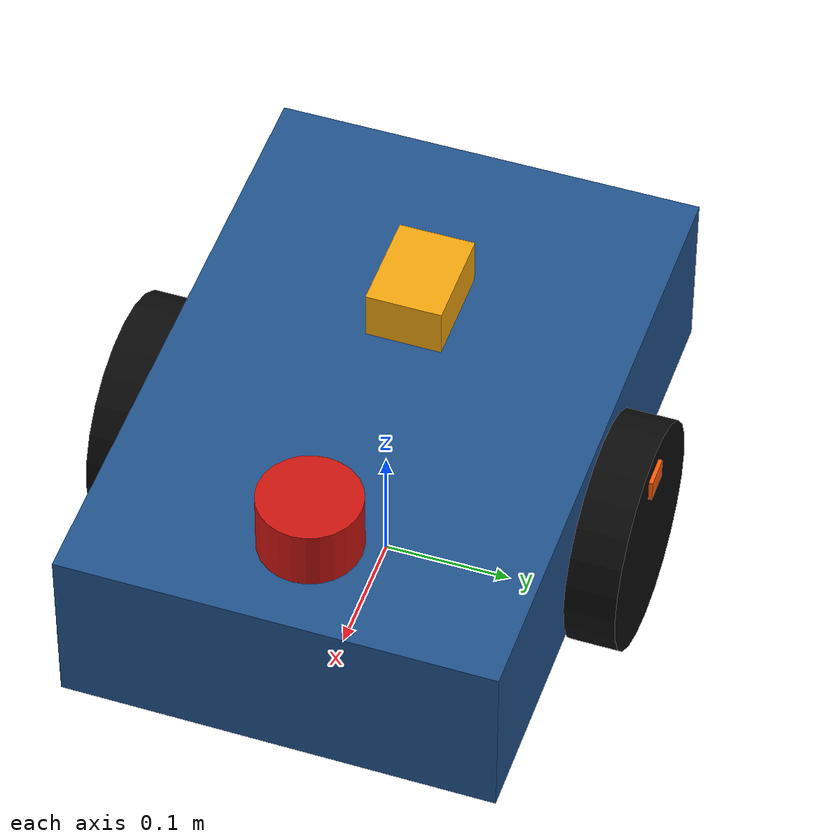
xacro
<?xml version="1.0"?>
<robot xmlns:xacro="http://www.ros.org/wiki/xacro"
       name="hazard_inspection_rover">

  <!--
    Keep Gazebo-only tags in a separate file. Module 2 can still expand this
    model without simulation plugins; Module 3 passes simulation:=true.
  -->
  <xacro:arg name="simulation" default="false"/>
  <xacro:include filename="hazard_rover.gazebo.xacro"/>

  <!-- Module 2 model scope                                             -->

  <!-- Primary chassis dimensions and mass (SI units: metres, kilograms). -->
  <xacro:property name="base_length" value="0.50"/>
  <xacro:property name="base_width" value="0.34"/>
  <xacro:property name="base_height" value="0.14"/>
  <xacro:property name="base_mass" value="9.00"/>
  <xacro:property name="ground_clearance" value="0.05"/>
  <xacro:property name="base_link_height"
                  value="${ground_clearance + base_height / 2.0}"/>

  <!-- Wheel dimensions and placement. -->
  <xacro:property name="wheel_radius" value="0.09"/>
  <xacro:property name="wheel_width" value="0.04"/>
  <xacro:property name="wheel_mass" value="0.55"/>
  <xacro:property name="wheel_y_offset"
                  value="${base_width / 2.0 + wheel_width / 2.0}"/>
  <xacro:property name="wheel_z_offset"
                  value="${wheel_radius - base_link_height}"/>

  <!-- Passive rear caster. It is fixed in Module 2 for visual simplicity. -->
  <xacro:property name="caster_radius" value="0.035"/>
  <xacro:property name="caster_mass" value="0.10"/>
  <xacro:property name="caster_x_offset" value="-0.19"/>
  <xacro:property name="caster_z_offset"
                  value="${caster_radius - base_link_height}"/>

  <!-- Sensor housing dimensions and masses. -->
  <xacro:property name="laser_radius" value="0.04"/>
  <xacro:property name="laser_height" value="0.05"/>
  <xacro:property name="laser_mass" value="0.18"/>
  <xacro:property name="sensor_length" value="0.08"/>
  <xacro:property name="sensor_width" value="0.06"/>
  <xacro:property name="sensor_height" value="0.04"/>
  <xacro:property name="sensor_mass" value="0.12"/>

  <!-- Reusable inertia macros                                          -->

  <xacro:macro name="box_inertial" params="mass x y z">
    <inertial>
      <origin xyz="0 0 0" rpy="0 0 0"/>
      <mass value="${mass}"/>
      <inertia
        ixx="${mass * (y * y + z * z) / 12.0}"
        ixy="0.0"
        ixz="0.0"
        iyy="${mass * (x * x + z * z) / 12.0}"
        iyz="0.0"
        izz="${mass * (x * x + y * y) / 12.0}"/>
    </inertial>
  </xacro:macro>

  <!-- Cylinder whose symmetry axis is the link's y-axis, used for wheels. -->
  <xacro:macro name="cylinder_y_inertial" params="mass radius length">
    <inertial>
      <origin xyz="0 0 0" rpy="0 0 0"/>
      <mass value="${mass}"/>
      <inertia
        ixx="${mass * (3.0 * radius * radius + length * length) / 12.0}"
        ixy="0.0"
        ixz="0.0"
        iyy="${mass * radius * radius / 2.0}"
        iyz="0.0"
        izz="${mass * (3.0 * radius * radius + length * length) / 12.0}"/>
    </inertial>
  </xacro:macro>

  <!-- Cylinder whose symmetry axis is the link's z-axis, used for lidar. -->
  <xacro:macro name="cylinder_z_inertial" params="mass radius length">
    <inertial>
      <origin xyz="0 0 0" rpy="0 0 0"/>
      <mass value="${mass}"/>
      <inertia
        ixx="${mass * (3.0 * radius * radius + length * length) / 12.0}"
        ixy="0.0"
        ixz="0.0"
        iyy="${mass * (3.0 * radius * radius + length * length) / 12.0}"
        iyz="0.0"
        izz="${mass * radius * radius / 2.0}"/>
    </inertial>
  </xacro:macro>

  <xacro:macro name="sphere_inertial" params="mass radius">
    <inertial>
      <origin xyz="0 0 0" rpy="0 0 0"/>
      <mass value="${mass}"/>
      <inertia
        ixx="${2.0 * mass * radius * radius / 5.0}"
        ixy="0.0"
        ixz="0.0"
        iyy="${2.0 * mass * radius * radius / 5.0}"
        iyz="0.0"
        izz="${2.0 * mass * radius * radius / 5.0}"/>
    </inertial>
  </xacro:macro>

  <!-- Reusable colors                                                  -->

  <material name="industrial_blue">
    <color rgba="0.12 0.32 0.55 1.0"/>
  </material>
  <material name="dark_rubber">
    <color rgba="0.04 0.04 0.04 1.0"/>
  </material>
  <material name="wheel_marker_orange">
    <color rgba="1.00 0.35 0.02 1.0"/>
  </material>
  <material name="caster_gray">
    <color rgba="0.35 0.35 0.38 1.0"/>
  </material>
  <material name="laser_red">
    <color rgba="0.80 0.08 0.06 1.0"/>
  </material>
  <material name="sensor_yellow">
    <color rgba="0.95 0.65 0.05 1.0"/>
  </material>

  <!-- Root and chassis                                                 -->

  <!-- Massless ground-projection frame. It remains on the floor plane. -->
  <link name="base_footprint"/>

  <joint name="base_footprint_joint" type="fixed">
    <parent link="base_footprint"/>
    <child link="base_link"/>
    <origin xyz="0 0 ${base_link_height}" rpy="0 0 0"/>
  </joint>

  <!-- Main body frame, located at the geometric centre of the chassis. -->
  <link name="base_link">
    <visual>
      <origin xyz="0 0 0" rpy="0 0 0"/>
      <geometry>
        <box size="${base_length} ${base_width} ${base_height}"/>
      </geometry>
      <material name="industrial_blue"/>
    </visual>
    <collision>
      <origin xyz="0 0 0" rpy="0 0 0"/>
      <geometry>
        <box size="${base_length} ${base_width} ${base_height}"/>
      </geometry>
    </collision>
    <xacro:box_inertial
      mass="${base_mass}"
      x="${base_length}"
      y="${base_width}"
      z="${base_height}"/>
  </link>

  <!-- Drive wheels                                                     -->

  <xacro:macro name="drive_wheel" params="side y_offset">
    <link name="${side}_wheel_link">
      <visual>
        <!-- URDF cylinders point along z; rotate them to point along y. -->
        <origin xyz="0 0 0" rpy="${pi / 2.0} 0 0"/>
        <geometry>
          <cylinder radius="${wheel_radius}" length="${wheel_width}"/>
        </geometry>
        <material name="dark_rubber"/>
      </visual>
      <!--
        A symmetric cylinder looks unchanged as it rotates. This small marker
        makes wheel rotation visible in both RViz2 and Gazebo.
      -->
      <visual name="${side}_wheel_rotation_marker">
        <origin
          xyz="0 0 ${0.72 * wheel_radius}"
          rpy="0 0 0"/>
        <geometry>
          <box size="0.025 ${wheel_width + 0.006} 0.018"/>
        </geometry>
        <material name="wheel_marker_orange"/>
      </visual>
      <collision>
        <origin xyz="0 0 0" rpy="${pi / 2.0} 0 0"/>
        <geometry>
          <cylinder radius="${wheel_radius}" length="${wheel_width}"/>
        </geometry>
      </collision>
      <xacro:cylinder_y_inertial
        mass="${wheel_mass}"
        radius="${wheel_radius}"
        length="${wheel_width}"/>
    </link>

    <joint name="${side}_wheel_joint" type="continuous">
      <parent link="base_link"/>
      <child link="${side}_wheel_link"/>
      <origin xyz="0 ${y_offset} ${wheel_z_offset}" rpy="0 0 0"/>
      <axis xyz="0 1 0"/>
      <limit effort="5.0" velocity="20.0"/>
    </joint>
  </xacro:macro>

  <xacro:drive_wheel side="left" y_offset="${wheel_y_offset}"/>
  <xacro:drive_wheel side="right" y_offset="${-wheel_y_offset}"/>

  <!-- Passive caster                                                   -->

  <link name="caster_link">
    <visual>
      <geometry>
        <sphere radius="${caster_radius}"/>
      </geometry>
      <material name="caster_gray"/>
    </visual>
    <collision>
      <geometry>
        <sphere radius="${caster_radius}"/>
      </geometry>
    </collision>
    <xacro:sphere_inertial
      mass="${caster_mass}"
      radius="${caster_radius}"/>
  </link>

  <joint name="caster_joint" type="fixed">
    <parent link="base_link"/>
    <child link="caster_link"/>
    <origin xyz="${caster_x_offset} 0 ${caster_z_offset}" rpy="0 0 0"/>
  </joint>

  <!-- Lidar housing and measurement frame                              -->

  <link name="laser_frame">
    <visual>
      <geometry>
        <cylinder radius="${laser_radius}" length="${laser_height}"/>
      </geometry>
      <material name="laser_red"/>
    </visual>
    <collision>
      <geometry>
        <cylinder radius="${laser_radius}" length="${laser_height}"/>
      </geometry>
    </collision>
    <xacro:cylinder_z_inertial
      mass="${laser_mass}"
      radius="${laser_radius}"
      length="${laser_height}"/>
  </link>

  <joint name="laser_joint" type="fixed">
    <parent link="base_link"/>
    <child link="laser_frame"/>
    <origin
      xyz="0.17 0 ${base_height / 2.0 + laser_height / 2.0}"
      rpy="0 0 0"/>
  </joint>

  <!-- Environmental sensor housing and frame                           -->

  <link name="sensor_frame">
    <visual>
      <geometry>
        <box size="${sensor_length} ${sensor_width} ${sensor_height}"/>
      </geometry>
      <material name="sensor_yellow"/>
    </visual>
    <collision>
      <geometry>
        <box size="${sensor_length} ${sensor_width} ${sensor_height}"/>
      </geometry>
    </collision>
    <xacro:box_inertial
      mass="${sensor_mass}"
      x="${sensor_length}"
      y="${sensor_width}"
      z="${sensor_height}"/>
  </link>

  <joint name="sensor_joint" type="fixed">
    <parent link="base_link"/>
    <child link="sensor_frame"/>
    <origin
      xyz="-0.08 0 ${base_height / 2.0 + sensor_height / 2.0}"
      rpy="0 0 0"/>
  </joint>

  <!-- Add physics, actuation, and lidar only for a Gazebo launch. -->
  <xacro:if value="$(arg simulation)">
    <xacro:hazard_rover_gazebo
      wheel_separation="${2.0 * wheel_y_offset}"
      wheel_radius="${wheel_radius}"/>
  </xacro:if>

</robot>
